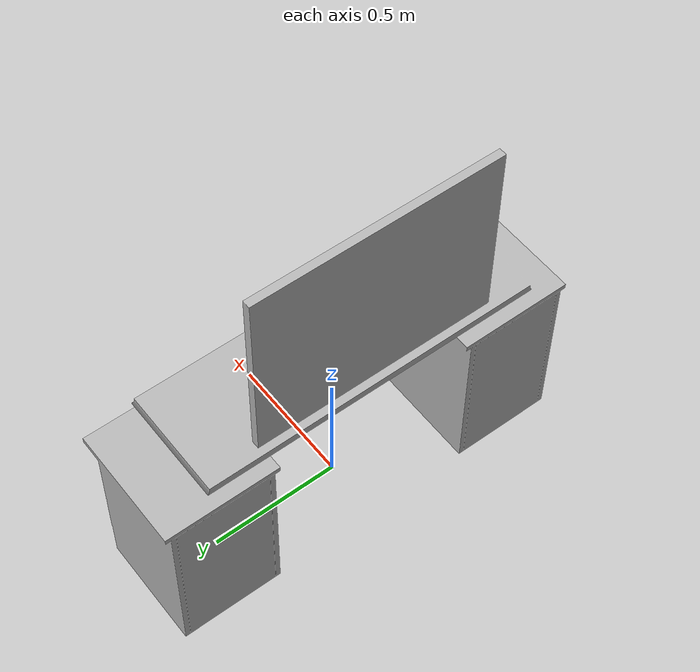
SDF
<?xml version='1.0'?>
<sdf version='1.4'>
  <model name='203'>
    <pose>0 0 0 0 0 0</pose>
    <static>true</static>
    <link name='link'>
      <collision name='collision'>
        <pose>0 0 0 0 0 0</pose>
        <geometry>
          <box>
            <size>0.460001 1.61 2</size>
          </box>
        </geometry>
      </collision>
      <visual name='visual'>
        <pose>0 0 0 0 0 0</pose>
        <geometry>
          <mesh><uri>model://203/203.dae</uri></mesh>
        </geometry>
      </visual>
    </link>
  </model>
</sdf>
